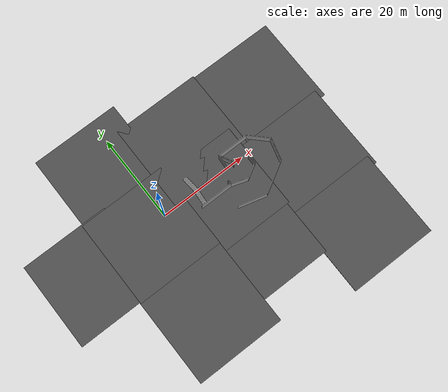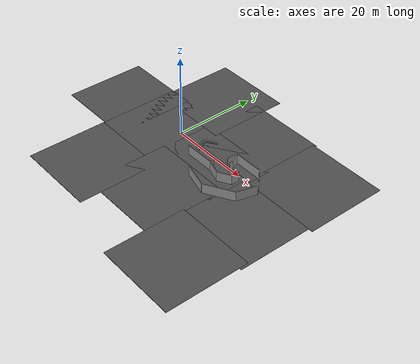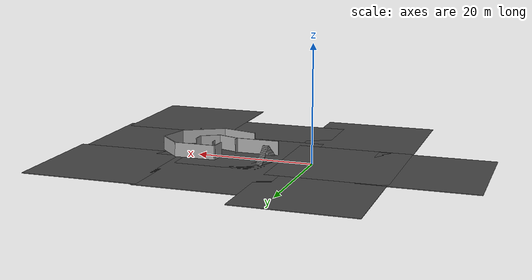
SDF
<sdf version="1.6">
 <world name="default">
  <light name="sun" type="directional">
   <pose>0 0 10 0 -0 0</pose>
   <diffuse>0.8 0.8 0.8 1</diffuse>
   <specular>0.2 0.2 0.2 1</specular>
   <attenuation>
    <range>1000</range>
    <constant>0.9</constant>
    <linear>0.01</linear>
    <quadratic>0.001</quadratic>
   </attenuation>
   <direction>-0.5 0.1 -0.9</direction>
  </light>
  <gravity>0 0 -9.8</gravity>
  <magnetic_field>6e-06 2.3e-05 -4.2e-05</magnetic_field>
  <atmosphere type="adiabatic"/>
  <physics name="default_physics" default="0" type="ode">
   <max_step_size>0.001</max_step_size>
   <real_time_factor>1</real_time_factor>
   <real_time_update_rate>1000</real_time_update_rate>
  </physics>
  <scene><ambient>0.4 0.4 0.4 1</ambient><background>0.7 0.7 0.7 1</background><shadows>1</shadows></scene>
  <audio><device>default</device></audio>
  <spherical_coordinates>
   <surface_model>EARTH_WGS84</surface_model>
   <latitude_deg>0</latitude_deg>
   <longitude_deg>0</longitude_deg>
   <elevation>0</elevation>
   <heading_deg>0</heading_deg>
  </spherical_coordinates>
  <model name="asphalt_plane">
   <static>1</static>
   <link name="link">
    <collision name="collision"><geometry><box><size>20 20 0.1</size></box></geometry></collision>
    <visual name="visual">
     <cast_shadows>0</cast_shadows>
     <geometry><box><size>20 20 0.1</size></box></geometry>
     <material>
      <script>
       <uri>model://asphalt_plane/materials/scripts</uri>
       <uri>model://asphalt_plane/materials/textures</uri>
       <name>vrc/asphalt</name>
      </script>
     </material>
    </visual>
   </link>
   <pose>-4.64285 -21.04 0 0 -0 0</pose>
  </model>
  <model name="asphalt_plane_clone">
   <static>1</static>
   <link name="link">
    <collision name="collision"><geometry><box><size>20 20 0.1</size></box></geometry></collision>
    <visual name="visual">
     <cast_shadows>0</cast_shadows>
     <geometry><box><size>20 20 0.1</size></box></geometry>
     <material>
      <script>
       <uri>model://asphalt_plane/materials/scripts</uri>
       <uri>model://asphalt_plane/materials/textures</uri>
       <name>vrc/asphalt</name>
      </script>
     </material>
    </visual>
   </link>
   <pose>-4.56138 -1.36583 0 0 -0 0</pose>
  </model>
  <model name="asphalt_plane_clone_0">
   <static>1</static>
   <link name="link">
    <collision name="collision"><geometry><box><size>20 20 0.1</size></box></geometry></collision>
    <visual name="visual">
     <cast_shadows>0</cast_shadows>
     <geometry><box><size>20 20 0.1</size></box></geometry>
     <material>
      <script>
       <uri>model://asphalt_plane/materials/scripts</uri>
       <uri>model://asphalt_plane/materials/textures</uri>
       <name>vrc/asphalt</name>
      </script>
     </material>
    </visual>
   </link>
   <pose>-4.35704 15.385 0 0 -0 0</pose>
  </model>
  <model name="asphalt_plane_clone_1">
   <static>1</static>
   <link name="link">
    <collision name="collision"><geometry><box><size>20 20 0.1</size></box></geometry></collision>
    <visual name="visual">
     <cast_shadows>0</cast_shadows>
     <geometry><box><size>20 20 0.1</size></box></geometry>
     <material>
      <script>
       <uri>model://asphalt_plane/materials/scripts</uri>
       <uri>model://asphalt_plane/materials/textures</uri>
       <name>vrc/asphalt</name>
      </script>
     </material>
    </visual>
   </link>
   <pose>12.919 10.3967 0 0 -0 0</pose>
  </model>
  <model name="asphalt_plane_clone_2">
   <static>1</static>
   <link name="link">
    <collision name="collision"><geometry><box><size>20 20 0.1</size></box></geometry></collision>
    <visual name="visual">
     <cast_shadows>0</cast_shadows>
     <geometry><box><size>20 20 0.1</size></box></geometry>
     <material>
      <script>
       <uri>model://asphalt_plane/materials/scripts</uri>
       <uri>model://asphalt_plane/materials/textures</uri>
       <name>vrc/asphalt</name>
      </script>
     </material>
    </visual>
   </link>
   <pose>11.7465 -3.39792 0 0 -0 0</pose>
  </model>
  <model name="asphalt_plane_clone_3">
   <static>1</static>
   <link name="link">
    <collision name="collision"><geometry><box><size>20 20 0.1</size></box></geometry></collision>
    <visual name="visual">
     <cast_shadows>0</cast_shadows>
     <geometry><box><size>20 20 0.1</size></box></geometry>
     <material>
      <script>
       <uri>model://asphalt_plane/materials/scripts</uri>
       <uri>model://asphalt_plane/materials/textures</uri>
       <name>vrc/asphalt</name>
      </script>
     </material>
    </visual>
   </link>
   <pose>11.2537 -15.8872 0 0 -0 0</pose>
  </model>
  <model name="asphalt_plane_clone_clone">
   <static>1</static>
   <link name="link">
    <collision name="collision"><geometry><box><size>20 20 0.1</size></box></geometry></collision>
    <visual name="visual">
     <cast_shadows>0</cast_shadows>
     <geometry><box><size>20 20 0.1</size></box></geometry>
     <material>
      <script>
       <uri>model://asphalt_plane/materials/scripts</uri>
       <uri>model://asphalt_plane/materials/textures</uri>
       <name>vrc/asphalt</name>
      </script>
     </material>
    </visual>
   </link>
   <pose>31.226 -8.00237 0 0 -0 0</pose>
  </model>
  <model name="asphalt_plane_clone_clone_0">
   <static>1</static>
   <link name="link">
    <collision name="collision"><geometry><box><size>20 20 0.1</size></box></geometry></collision>
    <visual name="visual">
     <cast_shadows>0</cast_shadows>
     <geometry><box><size>20 20 0.1</size></box></geometry>
     <material>
      <script>
       <uri>model://asphalt_plane/materials/scripts</uri>
       <uri>model://asphalt_plane/materials/textures</uri>
       <name>vrc/asphalt</name>
      </script>
     </material>
    </visual>
   </link>
   <pose>30.6756 -25.7849 0 0 -0 0</pose>
  </model>
  <model name="asphalt_plane_clone_clone_1">
   <static>1</static>
   <link name="link">
    <collision name="collision"><geometry><box><size>20 20 0.1</size></box></geometry></collision>
    <visual name="visual">
     <cast_shadows>0</cast_shadows>
     <geometry><box><size>20 20 0.1</size></box></geometry>
     <material>
      <script>
       <uri>model://asphalt_plane/materials/scripts</uri>
       <uri>model://asphalt_plane/materials/textures</uri>
       <name>vrc/asphalt</name>
      </script>
     </material>
    </visual>
   </link>
   <pose>32.2225 10.0057 0 0 -0 0</pose>
  </model>
  <model name="asphalt_plane_clone_clone_2">
   <static>1</static>
   <link name="link">
    <collision name="collision"><geometry><box><size>20 20 0.1</size></box></geometry></collision>
    <visual name="visual">
     <cast_shadows>0</cast_shadows>
     <geometry><box><size>20 20 0.1</size></box></geometry>
     <material>
      <script>
       <uri>model://asphalt_plane/materials/scripts</uri>
       <uri>model://asphalt_plane/materials/textures</uri>
       <name>vrc/asphalt</name>
      </script>
     </material>
    </visual>
   </link>
   <pose>-18.7535 -1.06566 0 0 -0 0</pose>
  </model>
  <model name="maze_loop">
   <pose>16.9317 -2.98867 0 0 -0 0</pose>
   <link name="Stairs_0">
    <visual name="Stairs_0_Visual_0">
     <pose>-8.96866 6.60079 0.083333 0 -0 0</pose>
     <geometry><box><size>1 0.233333 0.166667</size></box></geometry>
     <material>
      <script><uri>file://media/materials/scripts/gazebo.material</uri><name>Gazebo/Grey</name></script>
      <ambient>1 1 1 1</ambient>
     </material>
     <meta><layer>0</layer></meta>
    </visual>
    <collision name="Stairs_0_Collision_0">
     <geometry><box><size>1 0.233333 0.166667</size></box></geometry>
     <pose>-8.96866 6.60079 0.083333 0 -0 0</pose>
    </collision>
    <visual name="Stairs_0_Visual_1">
     <pose>-8.96866 6.36746 0.25 0 -0 0</pose>
     <geometry><box><size>1 0.233333 0.166667</size></box></geometry>
     <material>
      <script><uri>file://media/materials/scripts/gazebo.material</uri><name>Gazebo/Grey</name></script>
      <ambient>1 1 1 1</ambient>
     </material>
     <meta><layer>0</layer></meta>
    </visual>
    <collision name="Stairs_0_Collision_1">
     <geometry><box><size>1 0.233333 0.166667</size></box></geometry>
     <pose>-8.96866 6.36746 0.25 0 -0 0</pose>
    </collision>
    <visual name="Stairs_0_Visual_2">
     <pose>-8.96866 6.13413 0.416667 0 -0 0</pose>
     <geometry><box><size>1 0.233333 0.166667</size></box></geometry>
     <material>
      <script><uri>file://media/materials/scripts/gazebo.material</uri><name>Gazebo/Grey</name></script>
      <ambient>1 1 1 1</ambient>
     </material>
     <meta><layer>0</layer></meta>
    </visual>
    <collision name="Stairs_0_Collision_2">
     <geometry><box><size>1 0.233333 0.166667</size></box></geometry>
     <pose>-8.96866 6.13413 0.416667 0 -0 0</pose>
    </collision>
    <visual name="Stairs_0_Visual_3">
     <pose>-8.96866 5.90079 0.583333 0 -0 0</pose>
     <geometry><box><size>1 0.233333 0.166667</size></box></geometry>
     <material>
      <script><uri>file://media/materials/scripts/gazebo.material</uri><name>Gazebo/Grey</name></script>
      <ambient>1 1 1 1</ambient>
     </material>
     <meta><layer>0</layer></meta>
    </visual>
    <collision name="Stairs_0_Collision_3">
     <geometry><box><size>1 0.233333 0.166667</size></box></geometry>
     <pose>-8.96866 5.90079 0.583333 0 -0 0</pose>
    </collision>
    <visual name="Stairs_0_Visual_4">
     <pose>-8.96866 5.66746 0.75 0 -0 0</pose>
     <geometry><box><size>1 0.233333 0.166667</size></box></geometry>
     <material>
      <script><uri>file://media/materials/scripts/gazebo.material</uri><name>Gazebo/Grey</name></script>
      <ambient>1 1 1 1</ambient>
     </material>
     <meta><layer>0</layer></meta>
    </visual>
    <collision name="Stairs_0_Collision_4">
     <geometry><box><size>1 0.233333 0.166667</size></box></geometry>
     <pose>-8.96866 5.66746 0.75 0 -0 0</pose>
    </collision>
    <visual name="Stairs_0_Visual_5">
     <pose>-8.96866 5.43413 0.916667 0 -0 0</pose>
     <geometry><box><size>1 0.233333 0.166667</size></box></geometry>
     <material>
      <script><uri>file://media/materials/scripts/gazebo.material</uri><name>Gazebo/Grey</name></script>
      <ambient>1 1 1 1</ambient>
     </material>
     <meta><layer>0</layer></meta>
    </visual>
    <collision name="Stairs_0_Collision_5">
     <geometry><box><size>1 0.233333 0.166667</size></box></geometry>
     <pose>-8.96866 5.43413 0.916667 0 -0 0</pose>
    </collision>
    <visual name="Stairs_0_Visual_6">
     <pose>-8.96866 5.20079 1.08333 0 -0 0</pose>
     <geometry><box><size>1 0.233333 0.166667</size></box></geometry>
     <material>
      <script><uri>file://media/materials/scripts/gazebo.material</uri><name>Gazebo/Grey</name></script>
      <ambient>1 1 1 1</ambient>
     </material>
     <meta><layer>0</layer></meta>
    </visual>
    <collision name="Stairs_0_Collision_6">
     <geometry><box><size>1 0.233333 0.166667</size></box></geometry>
     <pose>-8.96866 5.20079 1.08333 0 -0 0</pose>
    </collision>
    <visual name="Stairs_0_Visual_7">
     <pose>-8.96866 4.96746 1.25 0 -0 0</pose>
     <geometry><box><size>1 0.233333 0.166667</size></box></geometry>
     <material>
      <script><uri>file://media/materials/scripts/gazebo.material</uri><name>Gazebo/Grey</name></script>
      <ambient>1 1 1 1</ambient>
     </material>
     <meta><layer>0</layer></meta>
    </visual>
    <collision name="Stairs_0_Collision_7">
     <geometry><box><size>1 0.233333 0.166667</size></box></geometry>
     <pose>-8.96866 4.96746 1.25 0 -0 0</pose>
    </collision>
    <visual name="Stairs_0_Visual_8">
     <pose>-8.96866 4.73413 1.41667 0 -0 0</pose>
     <geometry><box><size>1 0.233333 0.166667</size></box></geometry>
     <material>
      <script><uri>file://media/materials/scripts/gazebo.material</uri><name>Gazebo/Grey</name></script>
      <ambient>1 1 1 1</ambient>
     </material>
     <meta><layer>0</layer></meta>
    </visual>
    <collision name="Stairs_0_Collision_8">
     <geometry><box><size>1 0.233333 0.166667</size></box></geometry>
     <pose>-8.96866 4.73413 1.41667 0 -0 0</pose>
    </collision>
    <visual name="Stairs_0_Visual_9">
     <pose>-8.96866 4.50079 1.58333 0 -0 0</pose>
     <geometry><box><size>1 0.233333 0.166667</size></box></geometry>
     <material>
      <script><uri>file://media/materials/scripts/gazebo.material</uri><name>Gazebo/Grey</name></script>
      <ambient>1 1 1 1</ambient>
     </material>
     <meta><layer>0</layer></meta>
    </visual>
    <collision name="Stairs_0_Collision_9">
     <geometry><box><size>1 0.233333 0.166667</size></box></geometry>
     <pose>-8.96866 4.50079 1.58333 0 -0 0</pose>
    </collision>
    <visual name="Stairs_0_Visual_10">
     <pose>-8.96866 4.26746 1.75 0 -0 0</pose>
     <geometry><box><size>1 0.233333 0.166667</size></box></geometry>
     <material>
      <script><uri>file://media/materials/scripts/gazebo.material</uri><name>Gazebo/Grey</name></script>
      <ambient>1 1 1 1</ambient>
     </material>
     <meta><layer>0</layer></meta>
    </visual>
    <collision name="Stairs_0_Collision_10">
     <geometry><box><size>1 0.233333 0.166667</size></box></geometry>
     <pose>-8.96866 4.26746 1.75 0 -0 0</pose>
    </collision>
    <visual name="Stairs_0_Visual_11">
     <pose>-8.96866 4.03413 1.91667 0 -0 0</pose>
     <geometry><box><size>1 0.233333 0.166667</size></box></geometry>
     <material>
      <script><uri>file://media/materials/scripts/gazebo.material</uri><name>Gazebo/Grey</name></script>
      <ambient>1 1 1 1</ambient>
     </material>
     <meta><layer>0</layer></meta>
    </visual>
    <collision name="Stairs_0_Collision_11">
     <geometry><box><size>1 0.233333 0.166667</size></box></geometry>
     <pose>-8.96866 4.03413 1.91667 0 -0 0</pose>
    </collision>
    <visual name="Stairs_0_Visual_12">
     <pose>-8.96866 3.80079 2.08333 0 -0 0</pose>
     <geometry><box><size>1 0.233333 0.166667</size></box></geometry>
     <material>
      <script><uri>file://media/materials/scripts/gazebo.material</uri><name>Gazebo/Grey</name></script>
      <ambient>1 1 1 1</ambient>
     </material>
     <meta><layer>0</layer></meta>
    </visual>
    <collision name="Stairs_0_Collision_12">
     <geometry><box><size>1 0.233333 0.166667</size></box></geometry>
     <pose>-8.96866 3.80079 2.08333 0 -0 0</pose>
    </collision>
    <visual name="Stairs_0_Visual_13">
     <pose>-8.96866 3.56746 2.25 0 -0 0</pose>
     <geometry><box><size>1 0.233333 0.166667</size></box></geometry>
     <material>
      <script><uri>file://media/materials/scripts/gazebo.material</uri><name>Gazebo/Grey</name></script>
      <ambient>1 1 1 1</ambient>
     </material>
     <meta><layer>0</layer></meta>
    </visual>
    <collision name="Stairs_0_Collision_13">
     <geometry><box><size>1 0.233333 0.166667</size></box></geometry>
     <pose>-8.96866 3.56746 2.25 0 -0 0</pose>
    </collision>
    <visual name="Stairs_0_Visual_14">
     <pose>-8.96866 3.33413 2.41667 0 -0 0</pose>
     <geometry><box><size>1 0.233333 0.166667</size></box></geometry>
     <material>
      <script><uri>file://media/materials/scripts/gazebo.material</uri><name>Gazebo/Grey</name></script>
      <ambient>1 1 1 1</ambient>
     </material>
     <meta><layer>0</layer></meta>
    </visual>
    <collision name="Stairs_0_Collision_14">
     <geometry><box><size>1 0.233333 0.166667</size></box></geometry>
     <pose>-8.96866 3.33413 2.41667 0 -0 0</pose>
    </collision>
   </link>
   <link name="Stairs_1">
    <visual name="Stairs_1_Visual_0">
     <pose>-8.96866 -0.185874 0.083333 0 -0 -3.14159</pose>
     <geometry><box><size>1 0.233333 0.166667</size></box></geometry>
     <material>
      <script><uri>file://media/materials/scripts/gazebo.material</uri><name>Gazebo/Grey</name></script>
      <ambient>1 1 1 1</ambient>
     </material>
     <meta><layer>0</layer></meta>
    </visual>
    <collision name="Stairs_1_Collision_0">
     <geometry><box><size>1 0.233333 0.166667</size></box></geometry>
     <pose>-8.96866 -0.185874 0.083333 0 -0 -3.14159</pose>
    </collision>
    <visual name="Stairs_1_Visual_1">
     <pose>-8.96866 0.047459 0.25 0 -0 -3.14159</pose>
     <geometry><box><size>1 0.233333 0.166667</size></box></geometry>
     <material>
      <script><uri>file://media/materials/scripts/gazebo.material</uri><name>Gazebo/Grey</name></script>
      <ambient>1 1 1 1</ambient>
     </material>
     <meta><layer>0</layer></meta>
    </visual>
    <collision name="Stairs_1_Collision_1">
     <geometry><box><size>1 0.233333 0.166667</size></box></geometry>
     <pose>-8.96866 0.047459 0.25 0 -0 -3.14159</pose>
    </collision>
    <visual name="Stairs_1_Visual_2">
     <pose>-8.96866 0.280792 0.416667 0 -0 -3.14159</pose>
     <geometry><box><size>1 0.233333 0.166667</size></box></geometry>
     <material>
      <script><uri>file://media/materials/scripts/gazebo.material</uri><name>Gazebo/Grey</name></script>
      <ambient>1 1 1 1</ambient>
     </material>
     <meta><layer>0</layer></meta>
    </visual>
    <collision name="Stairs_1_Collision_2">
     <geometry><box><size>1 0.233333 0.166667</size></box></geometry>
     <pose>-8.96866 0.280792 0.416667 0 -0 -3.14159</pose>
    </collision>
    <visual name="Stairs_1_Visual_3">
     <pose>-8.96866 0.514126 0.583333 0 -0 -3.14159</pose>
     <geometry><box><size>1 0.233333 0.166667</size></box></geometry>
     <material>
      <script><uri>file://media/materials/scripts/gazebo.material</uri><name>Gazebo/Grey</name></script>
      <ambient>1 1 1 1</ambient>
     </material>
     <meta><layer>0</layer></meta>
    </visual>
    <collision name="Stairs_1_Collision_3">
     <geometry><box><size>1 0.233333 0.166667</size></box></geometry>
     <pose>-8.96866 0.514126 0.583333 0 -0 -3.14159</pose>
    </collision>
    <visual name="Stairs_1_Visual_4">
     <pose>-8.96866 0.74746 0.75 0 -0 -3.14159</pose>
     <geometry><box><size>1 0.233333 0.166667</size></box></geometry>
     <material>
      <script><uri>file://media/materials/scripts/gazebo.material</uri><name>Gazebo/Grey</name></script>
      <ambient>1 1 1 1</ambient>
     </material>
     <meta><layer>0</layer></meta>
    </visual>
    <collision name="Stairs_1_Collision_4">
     <geometry><box><size>1 0.233333 0.166667</size></box></geometry>
     <pose>-8.96866 0.74746 0.75 0 -0 -3.14159</pose>
    </collision>
    <visual name="Stairs_1_Visual_5">
     <pose>-8.96866 0.980793 0.916667 0 -0 -3.14159</pose>
     <geometry><box><size>1 0.233333 0.166667</size></box></geometry>
     <material>
      <script><uri>file://media/materials/scripts/gazebo.material</uri><name>Gazebo/Grey</name></script>
      <ambient>1 1 1 1</ambient>
     </material>
     <meta><layer>0</layer></meta>
    </visual>
    <collision name="Stairs_1_Collision_5">
     <geometry><box><size>1 0.233333 0.166667</size></box></geometry>
     <pose>-8.96866 0.980793 0.916667 0 -0 -3.14159</pose>
    </collision>
    <visual name="Stairs_1_Visual_6">
     <pose>-8.96866 1.21413 1.08333 0 -0 -3.14159</pose>
     <geometry><box><size>1 0.233333 0.166667</size></box></geometry>
     <material>
      <script><uri>file://media/materials/scripts/gazebo.material</uri><name>Gazebo/Grey</name></script>
      <ambient>1 1 1 1</ambient>
     </material>
     <meta><layer>0</layer></meta>
    </visual>
    <collision name="Stairs_1_Collision_6">
     <geometry><box><size>1 0.233333 0.166667</size></box></geometry>
     <pose>-8.96866 1.21413 1.08333 0 -0 -3.14159</pose>
    </collision>
    <visual name="Stairs_1_Visual_7">
     <pose>-8.96866 1.44746 1.25 0 -0 -3.14159</pose>
     <geometry><box><size>1 0.233333 0.166667</size></box></geometry>
     <material>
      <script><uri>file://media/materials/scripts/gazebo.material</uri><name>Gazebo/Grey</name></script>
      <ambient>1 1 1 1</ambient>
     </material>
     <meta><layer>0</layer></meta>
    </visual>
    <collision name="Stairs_1_Collision_7">
     <geometry><box><size>1 0.233333 0.166667</size></box></geometry>
     <pose>-8.96866 1.44746 1.25 0 -0 -3.14159</pose>
    </collision>
    <visual name="Stairs_1_Visual_8">
     <pose>-8.96866 1.68079 1.41667 0 -0 -3.14159</pose>
     <geometry><box><size>1 0.233333 0.166667</size></box></geometry>
     <material>
      <script><uri>file://media/materials/scripts/gazebo.material</uri><name>Gazebo/Grey</name></script>
      <ambient>1 1 1 1</ambient>
     </material>
     <meta><layer>0</layer></meta>
    </visual>
    <collision name="Stairs_1_Collision_8">
     <geometry><box><size>1 0.233333 0.166667</size></box></geometry>
     <pose>-8.96866 1.68079 1.41667 0 -0 -3.14159</pose>
    </collision>
    <visual name="Stairs_1_Visual_9">
     <pose>-8.96866 1.91413 1.58333 0 -0 -3.14159</pose>
     <geometry><box><size>1 0.233333 0.166667</size></box></geometry>
     <material>
      <script><uri>file://media/materials/scripts/gazebo.material</uri><name>Gazebo/Grey</name></script>
      <ambient>1 1 1 1</ambient>
     </material>
     <meta><layer>0</layer></meta>
    </visual>
    <collision name="Stairs_1_Collision_9">
     <geometry><box><size>1 0.233333 0.166667</size></box></geometry>
     <pose>-8.96866 1.91413 1.58333 0 -0 -3.14159</pose>
    </collision>
    <visual name="Stairs_1_Visual_10">
     <pose>-8.96866 2.14746 1.75 0 -0 -3.14159</pose>
     <geometry><box><size>1 0.233333 0.166667</size></box></geometry>
     <material>
      <script><uri>file://media/materials/scripts/gazebo.material</uri><name>Gazebo/Grey</name></script>
      <ambient>1 1 1 1</ambient>
     </material>
     <meta><layer>0</layer></meta>
    </visual>
    <collision name="Stairs_1_Collision_10">
     <geometry><box><size>1 0.233333 0.166667</size></box></geometry>
     <pose>-8.96866 2.14746 1.75 0 -0 -3.14159</pose>
    </collision>
    <visual name="Stairs_1_Visual_11">
     <pose>-8.96866 2.38079 1.91667 0 -0 -3.14159</pose>
     <geometry><box><size>1 0.233333 0.166667</size></box></geometry>
     <material>
      <script><uri>file://media/materials/scripts/gazebo.material</uri><name>Gazebo/Grey</name></script>
      <ambient>1 1 1 1</ambient>
     </material>
     <meta><layer>0</layer></meta>
    </visual>
    <collision name="Stairs_1_Collision_11">
     <geometry><box><size>1 0.233333 0.166667</size></box></geometry>
     <pose>-8.96866 2.38079 1.91667 0 -0 -3.14159</pose>
    </collision>
    <visual name="Stairs_1_Visual_12">
     <pose>-8.96866 2.61413 2.08333 0 -0 -3.14159</pose>
     <geometry><box><size>1 0.233333 0.166667</size></box></geometry>
     <material>
      <script><uri>file://media/materials/scripts/gazebo.material</uri><name>Gazebo/Grey</name></script>
      <ambient>1 1 1 1</ambient>
     </material>
     <meta><layer>0</layer></meta>
    </visual>
    <collision name="Stairs_1_Collision_12">
     <geometry><box><size>1 0.233333 0.166667</size></box></geometry>
     <pose>-8.96866 2.61413 2.08333 0 -0 -3.14159</pose>
    </collision>
    <visual name="Stairs_1_Visual_13">
     <pose>-8.96866 2.84746 2.25 0 -0 -3.14159</pose>
     <geometry><box><size>1 0.233333 0.166667</size></box></geometry>
     <material>
      <script><uri>file://media/materials/scripts/gazebo.material</uri><name>Gazebo/Grey</name></script>
      <ambient>1 1 1 1</ambient>
     </material>
     <meta><layer>0</layer></meta>
    </visual>
    <collision name="Stairs_1_Collision_13">
     <geometry><box><size>1 0.233333 0.166667</size></box></geometry>
     <pose>-8.96866 2.84746 2.25 0 -0 -3.14159</pose>
    </collision>
    <visual name="Stairs_1_Visual_14">
     <pose>-8.96866 3.08079 2.41667 0 -0 -3.14159</pose>
     <geometry><box><size>1 0.233333 0.166667</size></box></geometry>
     <material>
      <script><uri>file://media/materials/scripts/gazebo.material</uri><name>Gazebo/Grey</name></script>
      <ambient>1 1 1 1</ambient>
     </material>
     <meta><layer>0</layer></meta>
    </visual>
    <collision name="Stairs_1_Collision_14">
     <geometry><box><size>1 0.233333 0.166667</size></box></geometry>
     <pose>-8.96866 3.08079 2.41667 0 -0 -3.14159</pose>
    </collision>
   </link>
   <link name="Wall_0">
    <collision name="Wall_0_Collision">
     <geometry><box><size>2.7263 0.15 2.5</size></box></geometry>
     <pose>0 0 1.25 0 -0 0</pose>
    </collision>
    <visual name="Wall_0_Visual">
     <pose>0 0 1.25 0 -0 0</pose>
     <geometry><box><size>2.7263 0.15 2.5</size></box></geometry>
     <material>
      <script><uri>file://media/materials/scripts/gazebo.material</uri><name>Gazebo/Grey</name></script>
      <ambient>1 1 1 1</ambient>
     </material>
     <meta><layer>0</layer></meta>
    </visual>
    <pose>-0.908655 4.44246 0 0 -0 1.50087</pose>
   </link>
   <link name="Wall_10">
    <collision name="Wall_10_Collision">
     <geometry><box><size>2 0.15 2.5</size></box></geometry>
     <pose>0 0 1.25 0 -0 0</pose>
    </collision>
    <visual name="Wall_10_Visual">
     <pose>0 0 1.25 0 -0 0</pose>
     <geometry><box><size>2 0.15 2.5</size></box></geometry>
     <material>
      <script><uri>file://media/materials/scripts/gazebo.material</uri><name>Gazebo/Grey</name></script>
      <ambient>1 1 1 1</ambient>
     </material>
     <meta><layer>0</layer></meta>
    </visual>
    <pose>3.99134 0.962459 0 0 -0 1.5708</pose>
   </link>
   <link name="Wall_12">
    <collision name="Wall_12_Collision">
     <geometry><box><size>7.25 0.15 2.5</size></box></geometry>
     <pose>0 0 1.25 0 -0 0</pose>
    </collision>
    <visual name="Wall_12_Visual">
     <pose>0 0 1.25 0 -0 0</pose>
     <geometry><box><size>7.25 0.15 2.5</size></box></geometry>
     <material>
      <script><uri>file://media/materials/scripts/gazebo.material</uri><name>Gazebo/Grey</name></script>
      <ambient>1 1 1 1</ambient>
     </material>
     <meta><layer>0</layer></meta>
    </visual>
    <pose>2.73135 5.71746 0 0 -0 0</pose>
   </link>
   <link name="Wall_16">
    <collision name="Wall_16_Collision">
     <geometry><box><size>3.95755 0.15 2.5</size></box></geometry>
     <pose>0 0 1.25 0 -0 0</pose>
    </collision>
    <visual name="Wall_16_Visual">
     <pose>0 0 1.25 0 -0 0</pose>
     <geometry><box><size>3.95755 0.15 2.5</size></box></geometry>
     <material>
      <script><uri>file://media/materials/scripts/gazebo.material</uri><name>Gazebo/Grey</name></script>
      <ambient>1 1 1 1</ambient>
     </material>
     <meta><layer>0</layer></meta>
    </visual>
    <pose>-0.761075 -1.07004 0 0 -0 -0.319246</pose>
   </link>
   <link name="Wall_17">
    <collision name="Wall_17_Collision">
     <geometry><box><size>3.5 0.15 2.5</size></box></geometry>
     <pose>0 0 1.25 0 -0 0</pose>
    </collision>
    <visual name="Wall_17_Visual">
     <pose>0 0 1.25 0 -0 0</pose>
     <geometry><box><size>3.5 0.15 2.5</size></box></geometry>
     <material>
      <script><uri>file://media/materials/scripts/gazebo.material</uri><name>Gazebo/Grey</name></script>
      <ambient>1 1 1 1</ambient>
     </material>
     <meta><layer>0</layer></meta>
    </visual>
    <pose>2.4971 -0.830041 0 0 -0 0.523599</pose>
   </link>
   <link name="Wall_19">
    <collision name="Wall_19_Collision">
     <geometry><box><size>5.25 0.15 2.5</size></box></geometry>
     <pose>0 0 1.25 0 -0 0</pose>
    </collision>
    <visual name="Wall_19_Visual">
     <pose>0 0 1.25 0 -0 0</pose>
     <geometry><box><size>5.25 0.15 2.5</size></box></geometry>
     <material>
      <script><uri>file://media/materials/scripts/gazebo.material</uri><name>Gazebo/Grey</name></script>
      <ambient>1 1 1 1</ambient>
     </material>
     <meta><layer>0</layer></meta>
    </visual>
    <pose>8.08447 3.91434 0 0 -0 -0.785398</pose>
   </link>
   <link name="Wall_2">
    <collision name="Wall_2_Collision">
     <geometry><box><size>1 0.15 2.5</size></box></geometry>
     <pose>0 0 1.25 0 -0 0</pose>
    </collision>
    <visual name="Wall_2_Visual">
     <pose>0 0 1.25 0 -0 0</pose>
     <geometry><box><size>1 0.15 2.5</size></box></geometry>
     <material>
      <script><uri>file://media/materials/scripts/gazebo.material</uri><name>Gazebo/Grey</name></script>
      <ambient>1 1 1 1</ambient>
     </material>
     <meta><layer>0</layer></meta>
    </visual>
    <pose>-2.55865 -0.04754 0 0 -0 1.5708</pose>
   </link>
   <link name="Wall_21">
    <collision name="Wall_21_Collision">
     <geometry><box><size>5.25 0.15 2.5</size></box></geometry>
     <pose>0 0 1.25 0 -0 0</pose>
    </collision>
    <visual name="Wall_21_Visual">
     <pose>0 0 1.25 0 -0 0</pose>
     <geometry><box><size>5.25 0.15 2.5</size></box></geometry>
     <material>
      <script><uri>file://media/materials/scripts/gazebo.material</uri><name>Gazebo/Grey</name></script>
      <ambient>1 1 1 1</ambient>
     </material>
     <meta><layer>0</layer></meta>
    </visual>
    <pose>9.2276 -0.351896 0 0 -0 -1.8326</pose>
   </link>
   <link name="Wall_23">
    <collision name="Wall_23_Collision">
     <geometry><box><size>7.75 0.15 2.5</size></box></geometry>
     <pose>0 0 1.25 0 -0 0</pose>
    </collision>
    <visual name="Wall_23_Visual">
     <pose>0 0 1.25 0 -0 0</pose>
     <geometry><box><size>7.75 0.15 2.5</size></box></geometry>
     <material>
      <script><uri>file://media/materials/scripts/gazebo.material</uri><name>Gazebo/Grey</name></script>
      <ambient>1 1 1 1</ambient>
     </material>
     <meta><layer>0</layer></meta>
    </visual>
    <pose>5.27672 -4.71501 0 0 -0 -2.61799</pose>
   </link>
   <link name="Wall_24">
    <collision name="Wall_24_Collision">
     <geometry><box><size>6.5 0.15 2.5</size></box></geometry>
     <pose>0 0 1.25 0 -0 0</pose>
    </collision>
    <visual name="Wall_24_Visual">
     <pose>0 0 1.25 0 -0 0</pose>
     <geometry><box><size>6.5 0.15 2.5</size></box></geometry>
     <material>
      <script><uri>file://media/materials/scripts/gazebo.material</uri><name>Gazebo/Grey</name></script>
      <ambient>1 1 1 1</ambient>
     </material>
     <meta><layer>0</layer></meta>
    </visual>
    <pose>-1.08099 -5.79326 0 0 -0 2.87979</pose>
   </link>
   <link name="Wall_26">
    <collision name="Wall_26_Collision">
     <geometry><box><size>7.5 0.15 2.5</size></box></geometry>
     <pose>0 0 1.25 0 -0 0</pose>
    </collision>
    <visual name="Wall_26_Visual">
     <pose>0 0 1.25 0 -0 0</pose>
     <geometry><box><size>7.5 0.15 2.5</size></box></geometry>
     <material>
      <script><uri>file://media/materials/scripts/gazebo.material</uri><name>Gazebo/Grey</name></script>
      <ambient>1 1 1 1</ambient>
     </material>
     <meta><layer>0</layer></meta>
    </visual>
    <pose>-6.24366 -0.472541 0 0 -0 3.14159</pose>
   </link>
   <link name="Wall_4">
    <collision name="Wall_4_Collision">
     <geometry><box><size>1 0.15 2.5</size></box></geometry>
     <pose>0 0 1.25 0 -0 0</pose>
    </collision>
    <visual name="Wall_4_Visual">
     <pose>0 0 1.25 0 -0 0</pose>
     <geometry><box><size>1 0.15 2.5</size></box></geometry>
     <material>
      <script><uri>file://media/materials/scripts/gazebo.material</uri><name>Gazebo/Grey</name></script>
      <ambient>1 1 1 1</ambient>
     </material>
     <meta><layer>0</layer></meta>
    </visual>
    <pose>0.441345 2.84246 0 0 -0 -1.5708</pose>
   </link>
   <link name="Wall_6">
    <collision name="Wall_6_Collision">
     <geometry><box><size>2.91391 0.15 2.5</size></box></geometry>
     <pose>0 0 1.25 0 -0 0</pose>
    </collision>
    <visual name="Wall_6_Visual">
     <pose>0 0 1.25 0 -0 0</pose>
     <geometry><box><size>2.91391 0.15 2.5</size></box></geometry>
     <material>
      <script><uri>file://media/materials/scripts/gazebo.material</uri><name>Gazebo/Grey</name></script>
      <ambient>1 1 1 1</ambient>
     </material>
     <meta><layer>0</layer></meta>
    </visual>
    <pose>-0.188655 4.49746 0 0 -0 -1.09744</pose>
   </link>
   <static>1</static>
  </model>
 </world>
</sdf>
